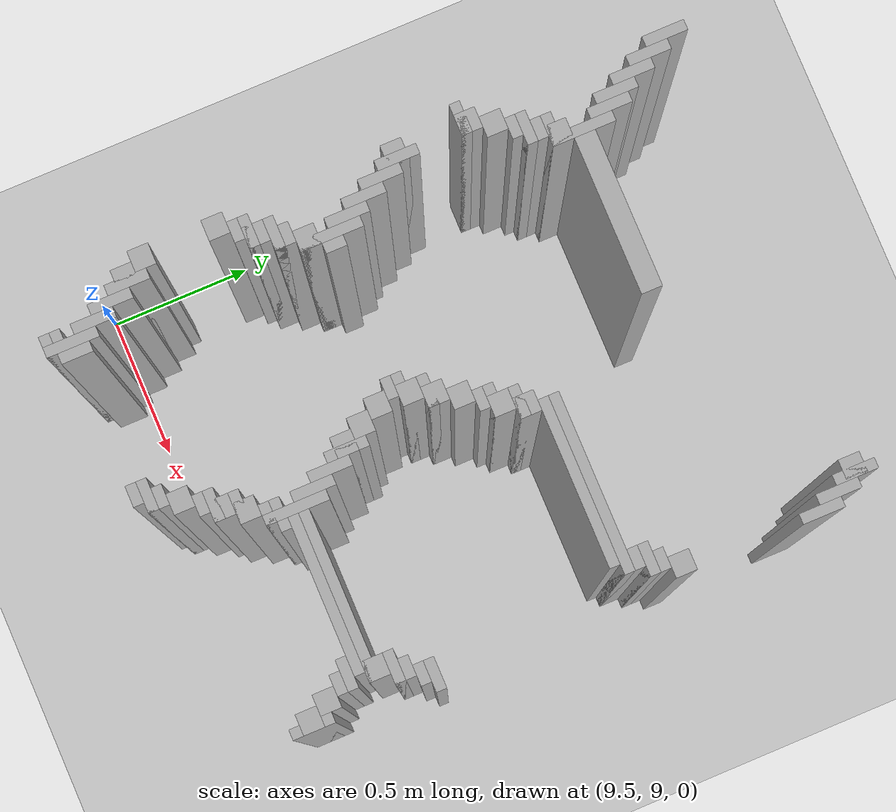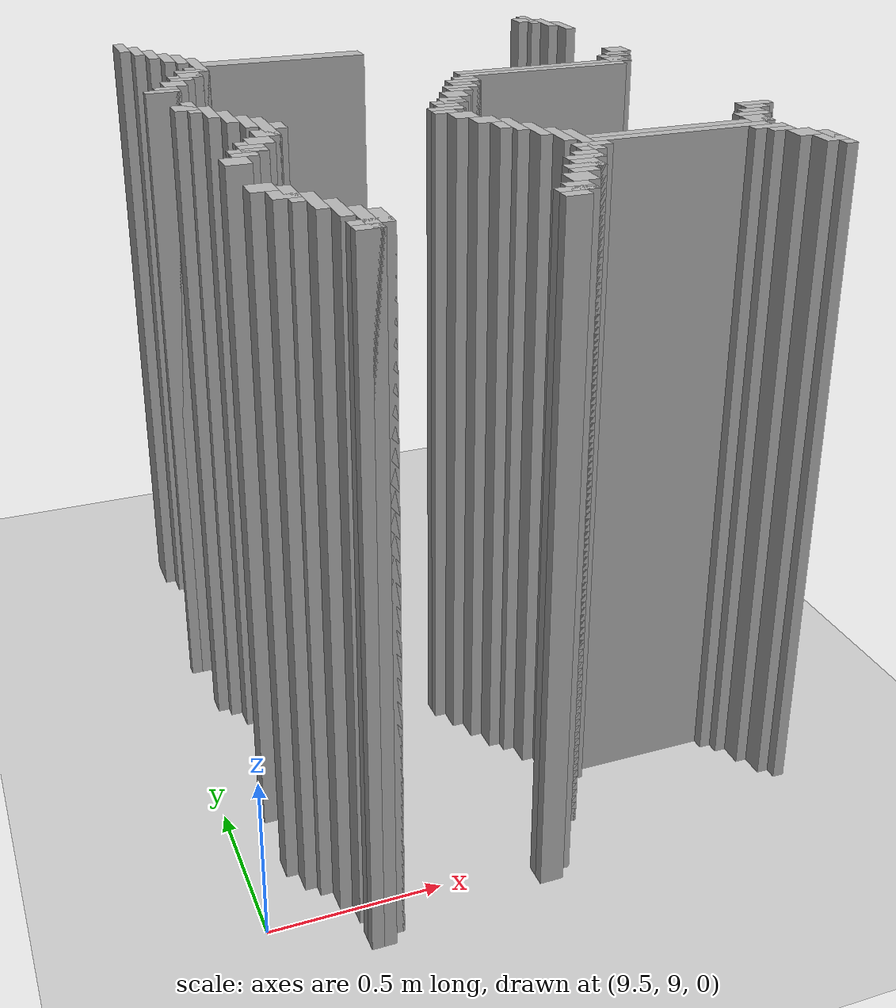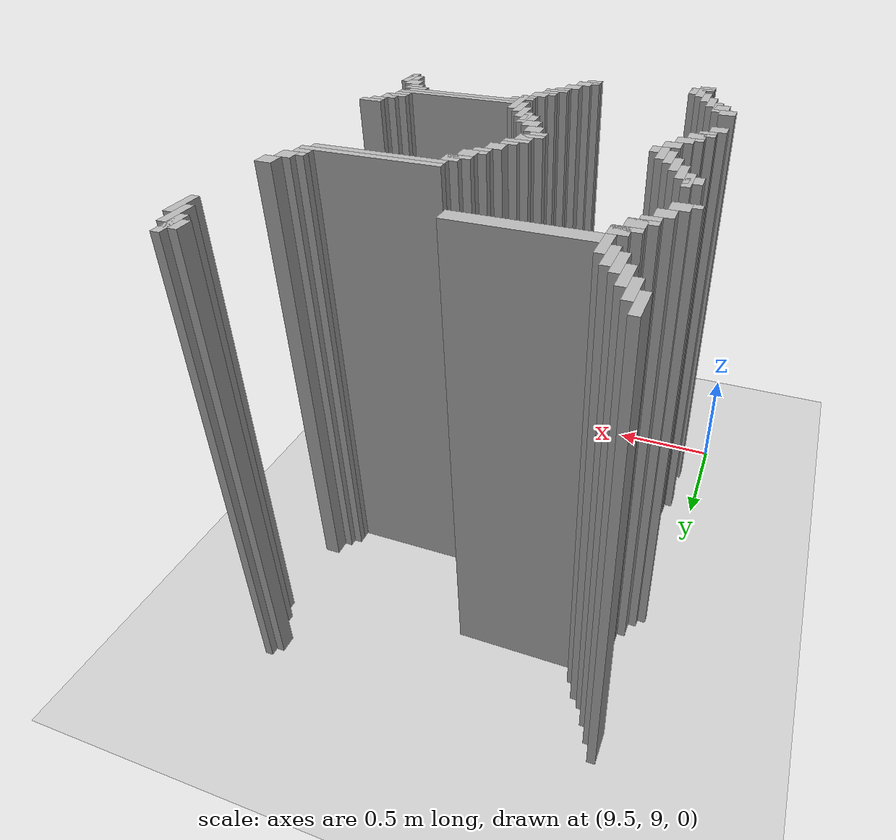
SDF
<sdf version="1.6">
 <world name="slam_world">
  <model name="ground_plane">
   <static>true</static>
   <link name="link">
    <collision name="collision">
     <geometry><plane><normal>0 0 1</normal><size>100 100</size></plane></geometry>
    </collision>
    <visual name="visual">
     <geometry><plane><normal>0 0 1</normal><size>100 100</size></plane></geometry>
     <material>
      <ambient>0.8 0.8 0.8 1</ambient>
      <diffuse>0.8 0.8 0.8 1</diffuse>
      <specular>0.8 0.8 0.8 1</specular>
     </material>
    </visual>
   </link>
  </model>
  <model name="wall_2192">
   <static>true</static>
   <pose>9.622969837587007 10.962877030162412 1.0 0 0 0</pose>
   <link name="link">
    <collision name="collision">
     <geometry><box><size>0.03480278422273782 0.13921113689095127 2.0</size></box></geometry>
    </collision>
    <visual name="visual">
     <geometry><box><size>0.03480278422273782 0.13921113689095127 2.0</size></box></geometry>
     <material><ambient>0.5 0.5 0.5 1</ambient><diffuse>0.7 0.7 0.7 1</diffuse></material>
    </visual>
   </link>
  </model>
  <model name="wall_2193">
   <static>true</static>
   <pose>11.084686774941995 10.962877030162412 1.0 0 0 0</pose>
   <link name="link">
    <collision name="collision">
     <geometry><box><size>0.03480278422273782 0.13921113689095127 2.0</size></box></geometry>
    </collision>
    <visual name="visual">
     <geometry><box><size>0.03480278422273782 0.13921113689095127 2.0</size></box></geometry>
     <material><ambient>0.5 0.5 0.5 1</ambient><diffuse>0.7 0.7 0.7 1</diffuse></material>
    </visual>
   </link>
  </model>
  <model name="wall_2205">
   <static>true</static>
   <pose>11.067285382830626 10.962877030162412 1.0 0 0 0</pose>
   <link name="link">
    <collision name="collision">
     <geometry><box><size>0.06960556844547564 0.06960556844547564 2.0</size></box></geometry>
    </collision>
    <visual name="visual">
     <geometry><box><size>0.06960556844547564 0.06960556844547564 2.0</size></box></geometry>
     <material><ambient>0.5 0.5 0.5 1</ambient><diffuse>0.7 0.7 0.7 1</diffuse></material>
    </visual>
   </link>
  </model>
  <model name="wall_2216">
   <static>true</static>
   <pose>9.657772621809745 10.893271461716937 1.0 0 0 0</pose>
   <link name="link">
    <collision name="collision">
     <geometry><box><size>0.03480278422273782 0.13921113689095127 2.0</size></box></geometry>
    </collision>
    <visual name="visual">
     <geometry><box><size>0.03480278422273782 0.13921113689095127 2.0</size></box></geometry>
     <material><ambient>0.5 0.5 0.5 1</ambient><diffuse>0.7 0.7 0.7 1</diffuse></material>
    </visual>
   </link>
  </model>
  <model name="wall_2217">
   <static>true</static>
   <pose>11.119489559164732 10.893271461716937 1.0 0 0 0</pose>
   <link name="link">
    <collision name="collision">
     <geometry><box><size>0.03480278422273782 0.13921113689095127 2.0</size></box></geometry>
    </collision>
    <visual name="visual">
     <geometry><box><size>0.03480278422273782 0.13921113689095127 2.0</size></box></geometry>
     <material><ambient>0.5 0.5 0.5 1</ambient><diffuse>0.7 0.7 0.7 1</diffuse></material>
    </visual>
   </link>
  </model>
  <model name="wall_2235">
   <static>true</static>
   <pose>9.692575406032482 10.82366589327146 1.0 0 0 0</pose>
   <link name="link">
    <collision name="collision">
     <geometry><box><size>0.03480278422273782 0.13921113689095127 2.0</size></box></geometry>
    </collision>
    <visual name="visual">
     <geometry><box><size>0.03480278422273782 0.13921113689095127 2.0</size></box></geometry>
     <material><ambient>0.5 0.5 0.5 1</ambient><diffuse>0.7 0.7 0.7 1</diffuse></material>
    </visual>
   </link>
  </model>
  <model name="wall_2236">
   <static>true</static>
   <pose>11.154292343387471 10.82366589327146 1.0 0 0 0</pose>
   <link name="link">
    <collision name="collision">
     <geometry><box><size>0.03480278422273782 0.13921113689095127 2.0</size></box></geometry>
    </collision>
    <visual name="visual">
     <geometry><box><size>0.03480278422273782 0.13921113689095127 2.0</size></box></geometry>
     <material><ambient>0.5 0.5 0.5 1</ambient><diffuse>0.7 0.7 0.7 1</diffuse></material>
    </visual>
   </link>
  </model>
  <model name="wall_2247">
   <static>true</static>
   <pose>9.72737819025522 10.754060324825986 1.0 0 0 0</pose>
   <link name="link">
    <collision name="collision">
     <geometry><box><size>0.03480278422273782 0.13921113689095127 2.0</size></box></geometry>
    </collision>
    <visual name="visual">
     <geometry><box><size>0.03480278422273782 0.13921113689095127 2.0</size></box></geometry>
     <material><ambient>0.5 0.5 0.5 1</ambient><diffuse>0.7 0.7 0.7 1</diffuse></material>
    </visual>
   </link>
  </model>
  <model name="wall_2259">
   <static>true</static>
   <pose>9.762180974477959 10.719257540603248 1.0 0 0 0</pose>
   <link name="link">
    <collision name="collision">
     <geometry><box><size>0.03480278422273782 0.13921113689095127 2.0</size></box></geometry>
    </collision>
    <visual name="visual">
     <geometry><box><size>0.03480278422273782 0.13921113689095127 2.0</size></box></geometry>
     <material><ambient>0.5 0.5 0.5 1</ambient><diffuse>0.7 0.7 0.7 1</diffuse></material>
    </visual>
   </link>
  </model>
  <model name="wall_2277">
   <static>true</static>
   <pose>9.796983758700696 10.614849187935034 1.0 0 0 0</pose>
   <link name="link">
    <collision name="collision">
     <geometry><box><size>0.03480278422273782 0.2088167053364269 2.0</size></box></geometry>
    </collision>
    <visual name="visual">
     <geometry><box><size>0.03480278422273782 0.2088167053364269 2.0</size></box></geometry>
     <material><ambient>0.5 0.5 0.5 1</ambient><diffuse>0.7 0.7 0.7 1</diffuse></material>
    </visual>
   </link>
  </model>
  <model name="wall_2296">
   <static>true</static>
   <pose>10.075406032482599 10.614849187935034 1.0 0 0 0</pose>
   <link name="link">
    <collision name="collision">
     <geometry><box><size>0.5220417633410672 0.06960556844547564 2.0</size></box></geometry>
    </collision>
    <visual name="visual">
     <geometry><box><size>0.5220417633410672 0.06960556844547564 2.0</size></box></geometry>
     <material><ambient>0.5 0.5 0.5 1</ambient><diffuse>0.7 0.7 0.7 1</diffuse></material>
    </visual>
   </link>
  </model>
  <model name="wall_2308">
   <static>true</static>
   <pose>9.779582366589327 10.54524361948956 1.0 0 0 0</pose>
   <link name="link">
    <collision name="collision">
     <geometry><box><size>0.06960556844547564 0.06960556844547564 2.0</size></box></geometry>
    </collision>
    <visual name="visual">
     <geometry><box><size>0.06960556844547564 0.06960556844547564 2.0</size></box></geometry>
     <material><ambient>0.5 0.5 0.5 1</ambient><diffuse>0.7 0.7 0.7 1</diffuse></material>
    </visual>
   </link>
  </model>
  <model name="wall_2319">
   <static>true</static>
   <pose>9.762180974477959 10.52784222737819 1.0 0 0 0</pose>
   <link name="link">
    <collision name="collision">
     <geometry><box><size>0.10440835266821345 0.03480278422273782 2.0</size></box></geometry>
    </collision>
    <visual name="visual">
     <geometry><box><size>0.10440835266821345 0.03480278422273782 2.0</size></box></geometry>
     <material><ambient>0.5 0.5 0.5 1</ambient><diffuse>0.7 0.7 0.7 1</diffuse></material>
    </visual>
   </link>
  </model>
  <model name="wall_2330">
   <static>true</static>
   <pose>9.744779582366588 10.475638051044083 1.0 0 0 0</pose>
   <link name="link">
    <collision name="collision">
     <geometry><box><size>0.06960556844547564 0.06960556844547564 2.0</size></box></geometry>
    </collision>
    <visual name="visual">
     <geometry><box><size>0.06960556844547564 0.06960556844547564 2.0</size></box></geometry>
     <material><ambient>0.5 0.5 0.5 1</ambient><diffuse>0.7 0.7 0.7 1</diffuse></material>
    </visual>
   </link>
  </model>
  <model name="wall_2341">
   <static>true</static>
   <pose>9.72737819025522 10.458236658932714 1.0 0 0 0</pose>
   <link name="link">
    <collision name="collision">
     <geometry><box><size>0.10440835266821345 0.03480278422273782 2.0</size></box></geometry>
    </collision>
    <visual name="visual">
     <geometry><box><size>0.10440835266821345 0.03480278422273782 2.0</size></box></geometry>
     <material><ambient>0.5 0.5 0.5 1</ambient><diffuse>0.7 0.7 0.7 1</diffuse></material>
    </visual>
   </link>
  </model>
  <model name="wall_2348">
   <static>true</static>
   <pose>9.70997679814385 10.423433874709977 1.0 0 0 0</pose>
   <link name="link">
    <collision name="collision">
     <geometry><box><size>0.06960556844547564 0.03480278422273782 2.0</size></box></geometry>
    </collision>
    <visual name="visual">
     <geometry><box><size>0.06960556844547564 0.03480278422273782 2.0</size></box></geometry>
     <material><ambient>0.5 0.5 0.5 1</ambient><diffuse>0.7 0.7 0.7 1</diffuse></material>
    </visual>
   </link>
  </model>
  <model name="wall_2357">
   <static>true</static>
   <pose>9.675174013921113 10.37122969837587 1.0 0 0 0</pose>
   <link name="link">
    <collision name="collision">
     <geometry><box><size>0.06960556844547564 0.06960556844547564 2.0</size></box></geometry>
    </collision>
    <visual name="visual">
     <geometry><box><size>0.06960556844547564 0.06960556844547564 2.0</size></box></geometry>
     <material><ambient>0.5 0.5 0.5 1</ambient><diffuse>0.7 0.7 0.7 1</diffuse></material>
    </visual>
   </link>
  </model>
  <model name="wall_2358">
   <static>true</static>
   <pose>11.1368909512761 10.37122969837587 1.0 0 0 0</pose>
   <link name="link">
    <collision name="collision">
     <geometry><box><size>0.06960556844547564 0.06960556844547564 2.0</size></box></geometry>
    </collision>
    <visual name="visual">
     <geometry><box><size>0.06960556844547564 0.06960556844547564 2.0</size></box></geometry>
     <material><ambient>0.5 0.5 0.5 1</ambient><diffuse>0.7 0.7 0.7 1</diffuse></material>
    </visual>
   </link>
  </model>
  <model name="wall_2368">
   <static>true</static>
   <pose>9.640371229698376 10.301624129930394 1.0 0 0 0</pose>
   <link name="link">
    <collision name="collision">
     <geometry><box><size>0.06960556844547564 0.06960556844547564 2.0</size></box></geometry>
    </collision>
    <visual name="visual">
     <geometry><box><size>0.06960556844547564 0.06960556844547564 2.0</size></box></geometry>
     <material><ambient>0.5 0.5 0.5 1</ambient><diffuse>0.7 0.7 0.7 1</diffuse></material>
    </visual>
   </link>
  </model>
  <model name="wall_2369">
   <static>true</static>
   <pose>11.102088167053363 10.301624129930394 1.0 0 0 0</pose>
   <link name="link">
    <collision name="collision">
     <geometry><box><size>0.06960556844547564 0.06960556844547564 2.0</size></box></geometry>
    </collision>
    <visual name="visual">
     <geometry><box><size>0.06960556844547564 0.06960556844547564 2.0</size></box></geometry>
     <material><ambient>0.5 0.5 0.5 1</ambient><diffuse>0.7 0.7 0.7 1</diffuse></material>
    </visual>
   </link>
  </model>
  <model name="wall_2379">
   <static>true</static>
   <pose>9.622969837587007 10.284222737819025 1.0 0 0 0</pose>
   <link name="link">
    <collision name="collision">
     <geometry><box><size>0.10440835266821345 0.03480278422273782 2.0</size></box></geometry>
    </collision>
    <visual name="visual">
     <geometry><box><size>0.10440835266821345 0.03480278422273782 2.0</size></box></geometry>
     <material><ambient>0.5 0.5 0.5 1</ambient><diffuse>0.7 0.7 0.7 1</diffuse></material>
    </visual>
   </link>
  </model>
  <model name="wall_2380">
   <static>true</static>
   <pose>11.084686774941995 10.284222737819025 1.0 0 0 0</pose>
   <link name="link">
    <collision name="collision">
     <geometry><box><size>0.10440835266821345 0.03480278422273782 2.0</size></box></geometry>
    </collision>
    <visual name="visual">
     <geometry><box><size>0.10440835266821345 0.03480278422273782 2.0</size></box></geometry>
     <material><ambient>0.5 0.5 0.5 1</ambient><diffuse>0.7 0.7 0.7 1</diffuse></material>
    </visual>
   </link>
  </model>
  <model name="wall_2387">
   <static>true</static>
   <pose>11.067285382830626 10.232018561484919 1.0 0 0 0</pose>
   <link name="link">
    <collision name="collision">
     <geometry><box><size>0.06960556844547564 0.06960556844547564 2.0</size></box></geometry>
    </collision>
    <visual name="visual">
     <geometry><box><size>0.06960556844547564 0.06960556844547564 2.0</size></box></geometry>
     <material><ambient>0.5 0.5 0.5 1</ambient><diffuse>0.7 0.7 0.7 1</diffuse></material>
    </visual>
   </link>
  </model>
  <model name="wall_2396">
   <static>true</static>
   <pose>10.806264501160092 10.214617169373549 1.0 0 0 0</pose>
   <link name="link">
    <collision name="collision">
     <geometry><box><size>0.5916473317865429 0.03480278422273782 2.0</size></box></geometry>
    </collision>
    <visual name="visual">
     <geometry><box><size>0.5916473317865429 0.03480278422273782 2.0</size></box></geometry>
     <material><ambient>0.5 0.5 0.5 1</ambient><diffuse>0.7 0.7 0.7 1</diffuse></material>
    </visual>
   </link>
  </model>
  <model name="wall_2404">
   <static>true</static>
   <pose>10.788863109048723 10.179814385150811 1.0 0 0 0</pose>
   <link name="link">
    <collision name="collision">
     <geometry><box><size>0.5568445475638051 0.03480278422273782 2.0</size></box></geometry>
    </collision>
    <visual name="visual">
     <geometry><box><size>0.5568445475638051 0.03480278422273782 2.0</size></box></geometry>
     <material><ambient>0.5 0.5 0.5 1</ambient><diffuse>0.7 0.7 0.7 1</diffuse></material>
    </visual>
   </link>
  </model>
  <model name="wall_2414">
   <static>true</static>
   <pose>10.51044083526682 10.127610208816705 1.0 0 0 0</pose>
   <link name="link">
    <collision name="collision">
     <geometry><box><size>0.06960556844547564 0.06960556844547564 2.0</size></box></geometry>
    </collision>
    <visual name="visual">
     <geometry><box><size>0.06960556844547564 0.06960556844547564 2.0</size></box></geometry>
     <material><ambient>0.5 0.5 0.5 1</ambient><diffuse>0.7 0.7 0.7 1</diffuse></material>
    </visual>
   </link>
  </model>
  <model name="wall_2427">
   <static>true</static>
   <pose>9.657772621809745 10.058004640371228 1.0 0 0 0</pose>
   <link name="link">
    <collision name="collision">
     <geometry><box><size>0.03480278422273782 0.13921113689095127 2.0</size></box></geometry>
    </collision>
    <visual name="visual">
     <geometry><box><size>0.03480278422273782 0.13921113689095127 2.0</size></box></geometry>
     <material><ambient>0.5 0.5 0.5 1</ambient><diffuse>0.7 0.7 0.7 1</diffuse></material>
    </visual>
   </link>
  </model>
  <model name="wall_2428">
   <static>true</static>
   <pose>10.493039443155451 10.110208816705336 1.0 0 0 0</pose>
   <link name="link">
    <collision name="collision">
     <geometry><box><size>0.10440835266821345 0.03480278422273782 2.0</size></box></geometry>
    </collision>
    <visual name="visual">
     <geometry><box><size>0.10440835266821345 0.03480278422273782 2.0</size></box></geometry>
     <material><ambient>0.5 0.5 0.5 1</ambient><diffuse>0.7 0.7 0.7 1</diffuse></material>
    </visual>
   </link>
  </model>
  <model name="wall_2441">
   <static>true</static>
   <pose>9.640371229698376 10.058004640371228 1.0 0 0 0</pose>
   <link name="link">
    <collision name="collision">
     <geometry><box><size>0.06960556844547564 0.06960556844547564 2.0</size></box></geometry>
    </collision>
    <visual name="visual">
     <geometry><box><size>0.06960556844547564 0.06960556844547564 2.0</size></box></geometry>
     <material><ambient>0.5 0.5 0.5 1</ambient><diffuse>0.7 0.7 0.7 1</diffuse></material>
    </visual>
   </link>
  </model>
  <model name="wall_2442">
   <static>true</static>
   <pose>10.475638051044083 10.058004640371228 1.0 0 0 0</pose>
   <link name="link">
    <collision name="collision">
     <geometry><box><size>0.06960556844547564 0.06960556844547564 2.0</size></box></geometry>
    </collision>
    <visual name="visual">
     <geometry><box><size>0.06960556844547564 0.06960556844547564 2.0</size></box></geometry>
     <material><ambient>0.5 0.5 0.5 1</ambient><diffuse>0.7 0.7 0.7 1</diffuse></material>
    </visual>
   </link>
  </model>
  <model name="wall_2455">
   <static>true</static>
   <pose>9.692575406032482 9.988399071925754 1.0 0 0 0</pose>
   <link name="link">
    <collision name="collision">
     <geometry><box><size>0.03480278422273782 0.13921113689095127 2.0</size></box></geometry>
    </collision>
    <visual name="visual">
     <geometry><box><size>0.03480278422273782 0.13921113689095127 2.0</size></box></geometry>
     <material><ambient>0.5 0.5 0.5 1</ambient><diffuse>0.7 0.7 0.7 1</diffuse></material>
    </visual>
   </link>
  </model>
  <model name="wall_2456">
   <static>true</static>
   <pose>10.458236658932714 10.04060324825986 1.0 0 0 0</pose>
   <link name="link">
    <collision name="collision">
     <geometry><box><size>0.10440835266821345 0.03480278422273782 2.0</size></box></geometry>
    </collision>
    <visual name="visual">
     <geometry><box><size>0.10440835266821345 0.03480278422273782 2.0</size></box></geometry>
     <material><ambient>0.5 0.5 0.5 1</ambient><diffuse>0.7 0.7 0.7 1</diffuse></material>
    </visual>
   </link>
  </model>
  <model name="wall_2466">
   <static>true</static>
   <pose>10.440835266821345 10.005800464037122 1.0 0 0 0</pose>
   <link name="link">
    <collision name="collision">
     <geometry><box><size>0.06960556844547564 0.03480278422273782 2.0</size></box></geometry>
    </collision>
    <visual name="visual">
     <geometry><box><size>0.06960556844547564 0.03480278422273782 2.0</size></box></geometry>
     <material><ambient>0.5 0.5 0.5 1</ambient><diffuse>0.7 0.7 0.7 1</diffuse></material>
    </visual>
   </link>
  </model>
  <model name="wall_2477">
   <static>true</static>
   <pose>9.72737819025522 9.918793503480279 1.0 0 0 0</pose>
   <link name="link">
    <collision name="collision">
     <geometry><box><size>0.03480278422273782 0.13921113689095127 2.0</size></box></geometry>
    </collision>
    <visual name="visual">
     <geometry><box><size>0.03480278422273782 0.13921113689095127 2.0</size></box></geometry>
     <material><ambient>0.5 0.5 0.5 1</ambient><diffuse>0.7 0.7 0.7 1</diffuse></material>
    </visual>
   </link>
  </model>
  <model name="wall_2478">
   <static>true</static>
   <pose>10.406032482598608 9.953596287703016 1.0 0 0 0</pose>
   <link name="link">
    <collision name="collision">
     <geometry><box><size>0.06960556844547564 0.06960556844547564 2.0</size></box></geometry>
    </collision>
    <visual name="visual">
     <geometry><box><size>0.06960556844547564 0.06960556844547564 2.0</size></box></geometry>
     <material><ambient>0.5 0.5 0.5 1</ambient><diffuse>0.7 0.7 0.7 1</diffuse></material>
    </visual>
   </link>
  </model>
  <model name="wall_2491">
   <static>true</static>
   <pose>9.762180974477959 9.849187935034802 1.0 0 0 0</pose>
   <link name="link">
    <collision name="collision">
     <geometry><box><size>0.03480278422273782 0.13921113689095127 2.0</size></box></geometry>
    </collision>
    <visual name="visual">
     <geometry><box><size>0.03480278422273782 0.13921113689095127 2.0</size></box></geometry>
     <material><ambient>0.5 0.5 0.5 1</ambient><diffuse>0.7 0.7 0.7 1</diffuse></material>
    </visual>
   </link>
  </model>
  <model name="wall_2492">
   <static>true</static>
   <pose>10.37122969837587 9.88399071925754 1.0 0 0 0</pose>
   <link name="link">
    <collision name="collision">
     <geometry><box><size>0.06960556844547564 0.06960556844547564 2.0</size></box></geometry>
    </collision>
    <visual name="visual">
     <geometry><box><size>0.06960556844547564 0.06960556844547564 2.0</size></box></geometry>
     <material><ambient>0.5 0.5 0.5 1</ambient><diffuse>0.7 0.7 0.7 1</diffuse></material>
    </visual>
   </link>
  </model>
  <model name="wall_2505">
   <static>true</static>
   <pose>9.796983758700696 9.779582366589327 1.0 0 0 0</pose>
   <link name="link">
    <collision name="collision">
     <geometry><box><size>0.03480278422273782 0.2088167053364269 2.0</size></box></geometry>
    </collision>
    <visual name="visual">
     <geometry><box><size>0.03480278422273782 0.2088167053364269 2.0</size></box></geometry>
     <material><ambient>0.5 0.5 0.5 1</ambient><diffuse>0.7 0.7 0.7 1</diffuse></material>
    </visual>
   </link>
  </model>
  <model name="wall_2506">
   <static>true</static>
   <pose>10.3538283062645 9.86658932714617 1.0 0 0 0</pose>
   <link name="link">
    <collision name="collision">
     <geometry><box><size>0.10440835266821345 0.03480278422273782 2.0</size></box></geometry>
    </collision>
    <visual name="visual">
     <geometry><box><size>0.10440835266821345 0.03480278422273782 2.0</size></box></geometry>
     <material><ambient>0.5 0.5 0.5 1</ambient><diffuse>0.7 0.7 0.7 1</diffuse></material>
    </visual>
   </link>
  </model>
  <model name="wall_2516">
   <static>true</static>
   <pose>10.336426914153131 9.814385150812065 1.0 0 0 0</pose>
   <link name="link">
    <collision name="collision">
     <geometry><box><size>0.06960556844547564 0.06960556844547564 2.0</size></box></geometry>
    </collision>
    <visual name="visual">
     <geometry><box><size>0.06960556844547564 0.06960556844547564 2.0</size></box></geometry>
     <material><ambient>0.5 0.5 0.5 1</ambient><diffuse>0.7 0.7 0.7 1</diffuse></material>
    </visual>
   </link>
  </model>
  <model name="wall_2527">
   <static>true</static>
   <pose>9.831786542923433 9.779582366589327 1.0 0 0 0</pose>
   <link name="link">
    <collision name="collision">
     <geometry><box><size>0.03480278422273782 0.06960556844547564 2.0</size></box></geometry>
    </collision>
    <visual name="visual">
     <geometry><box><size>0.03480278422273782 0.06960556844547564 2.0</size></box></geometry>
     <material><ambient>0.5 0.5 0.5 1</ambient><diffuse>0.7 0.7 0.7 1</diffuse></material>
    </visual>
   </link>
  </model>
  <model name="wall_2528">
   <static>true</static>
   <pose>10.319025522041763 9.796983758700696 1.0 0 0 0</pose>
   <link name="link">
    <collision name="collision">
     <geometry><box><size>0.10440835266821345 0.03480278422273782 2.0</size></box></geometry>
    </collision>
    <visual name="visual">
     <geometry><box><size>0.10440835266821345 0.03480278422273782 2.0</size></box></geometry>
     <material><ambient>0.5 0.5 0.5 1</ambient><diffuse>0.7 0.7 0.7 1</diffuse></material>
    </visual>
   </link>
  </model>
  <model name="wall_2538">
   <static>true</static>
   <pose>10.301624129930394 9.762180974477959 1.0 0 0 0</pose>
   <link name="link">
    <collision name="collision">
     <geometry><box><size>0.06960556844547564 0.03480278422273782 2.0</size></box></geometry>
    </collision>
    <visual name="visual">
     <geometry><box><size>0.06960556844547564 0.03480278422273782 2.0</size></box></geometry>
     <material><ambient>0.5 0.5 0.5 1</ambient><diffuse>0.7 0.7 0.7 1</diffuse></material>
    </visual>
   </link>
  </model>
  <model name="wall_2547">
   <static>true</static>
   <pose>9.779582366589327 9.70997679814385 1.0 0 0 0</pose>
   <link name="link">
    <collision name="collision">
     <geometry><box><size>0.06960556844547564 0.06960556844547564 2.0</size></box></geometry>
    </collision>
    <visual name="visual">
     <geometry><box><size>0.06960556844547564 0.06960556844547564 2.0</size></box></geometry>
     <material><ambient>0.5 0.5 0.5 1</ambient><diffuse>0.7 0.7 0.7 1</diffuse></material>
    </visual>
   </link>
  </model>
  <model name="wall_2548">
   <static>true</static>
   <pose>10.336426914153131 9.70997679814385 1.0 0 0 0</pose>
   <link name="link">
    <collision name="collision">
     <geometry><box><size>0.06960556844547564 0.06960556844547564 2.0</size></box></geometry>
    </collision>
    <visual name="visual">
     <geometry><box><size>0.06960556844547564 0.06960556844547564 2.0</size></box></geometry>
     <material><ambient>0.5 0.5 0.5 1</ambient><diffuse>0.7 0.7 0.7 1</diffuse></material>
    </visual>
   </link>
  </model>
  <model name="wall_2564">
   <static>true</static>
   <pose>9.744779582366588 9.640371229698376 1.0 0 0 0</pose>
   <link name="link">
    <collision name="collision">
     <geometry><box><size>0.06960556844547564 0.06960556844547564 2.0</size></box></geometry>
    </collision>
    <visual name="visual">
     <geometry><box><size>0.06960556844547564 0.06960556844547564 2.0</size></box></geometry>
     <material><ambient>0.5 0.5 0.5 1</ambient><diffuse>0.7 0.7 0.7 1</diffuse></material>
    </visual>
   </link>
  </model>
  <model name="wall_2565">
   <static>true</static>
   <pose>10.37122969837587 9.640371229698376 1.0 0 0 0</pose>
   <link name="link">
    <collision name="collision">
     <geometry><box><size>0.06960556844547564 0.06960556844547564 2.0</size></box></geometry>
    </collision>
    <visual name="visual">
     <geometry><box><size>0.06960556844547564 0.06960556844547564 2.0</size></box></geometry>
     <material><ambient>0.5 0.5 0.5 1</ambient><diffuse>0.7 0.7 0.7 1</diffuse></material>
    </visual>
   </link>
  </model>
  <model name="wall_2575">
   <static>true</static>
   <pose>9.72737819025522 9.622969837587007 1.0 0 0 0</pose>
   <link name="link">
    <collision name="collision">
     <geometry><box><size>0.10440835266821345 0.03480278422273782 2.0</size></box></geometry>
    </collision>
    <visual name="visual">
     <geometry><box><size>0.10440835266821345 0.03480278422273782 2.0</size></box></geometry>
     <material><ambient>0.5 0.5 0.5 1</ambient><diffuse>0.7 0.7 0.7 1</diffuse></material>
    </visual>
   </link>
  </model>
  <model name="wall_2576">
   <static>true</static>
   <pose>10.423433874709977 9.5707656612529 1.0 0 0 0</pose>
   <link name="link">
    <collision name="collision">
     <geometry><box><size>0.03480278422273782 0.13921113689095127 2.0</size></box></geometry>
    </collision>
    <visual name="visual">
     <geometry><box><size>0.03480278422273782 0.13921113689095127 2.0</size></box></geometry>
     <material><ambient>0.5 0.5 0.5 1</ambient><diffuse>0.7 0.7 0.7 1</diffuse></material>
    </visual>
   </link>
  </model>
  <model name="wall_2586">
   <static>true</static>
   <pose>9.70997679814385 9.5707656612529 1.0 0 0 0</pose>
   <link name="link">
    <collision name="collision">
     <geometry><box><size>0.06960556844547564 0.06960556844547564 2.0</size></box></geometry>
    </collision>
    <visual name="visual">
     <geometry><box><size>0.06960556844547564 0.06960556844547564 2.0</size></box></geometry>
     <material><ambient>0.5 0.5 0.5 1</ambient><diffuse>0.7 0.7 0.7 1</diffuse></material>
    </visual>
   </link>
  </model>
  <model name="wall_2587">
   <static>true</static>
   <pose>10.406032482598608 9.5707656612529 1.0 0 0 0</pose>
   <link name="link">
    <collision name="collision">
     <geometry><box><size>0.06960556844547564 0.06960556844547564 2.0</size></box></geometry>
    </collision>
    <visual name="visual">
     <geometry><box><size>0.06960556844547564 0.06960556844547564 2.0</size></box></geometry>
     <material><ambient>0.5 0.5 0.5 1</ambient><diffuse>0.7 0.7 0.7 1</diffuse></material>
    </visual>
   </link>
  </model>
  <model name="wall_2597">
   <static>true</static>
   <pose>9.692575406032482 9.55336426914153 1.0 0 0 0</pose>
   <link name="link">
    <collision name="collision">
     <geometry><box><size>0.10440835266821345 0.03480278422273782 2.0</size></box></geometry>
    </collision>
    <visual name="visual">
     <geometry><box><size>0.10440835266821345 0.03480278422273782 2.0</size></box></geometry>
     <material><ambient>0.5 0.5 0.5 1</ambient><diffuse>0.7 0.7 0.7 1</diffuse></material>
    </visual>
   </link>
  </model>
  <model name="wall_2598">
   <static>true</static>
   <pose>10.458236658932714 9.501160092807424 1.0 0 0 0</pose>
   <link name="link">
    <collision name="collision">
     <geometry><box><size>0.03480278422273782 0.13921113689095127 2.0</size></box></geometry>
    </collision>
    <visual name="visual">
     <geometry><box><size>0.03480278422273782 0.13921113689095127 2.0</size></box></geometry>
     <material><ambient>0.5 0.5 0.5 1</ambient><diffuse>0.7 0.7 0.7 1</diffuse></material>
    </visual>
   </link>
  </model>
  <model name="wall_2599">
   <static>true</static>
   <pose>11.154292343387471 9.55336426914153 1.0 0 0 0</pose>
   <link name="link">
    <collision name="collision">
     <geometry><box><size>0.10440835266821345 0.03480278422273782 2.0</size></box></geometry>
    </collision>
    <visual name="visual">
     <geometry><box><size>0.10440835266821345 0.03480278422273782 2.0</size></box></geometry>
     <material><ambient>0.5 0.5 0.5 1</ambient><diffuse>0.7 0.7 0.7 1</diffuse></material>
    </visual>
   </link>
  </model>
  <model name="wall_2604">
   <static>true</static>
   <pose>9.675174013921113 9.518561484918793 1.0 0 0 0</pose>
   <link name="link">
    <collision name="collision">
     <geometry><box><size>0.06960556844547564 0.03480278422273782 2.0</size></box></geometry>
    </collision>
    <visual name="visual">
     <geometry><box><size>0.06960556844547564 0.03480278422273782 2.0</size></box></geometry>
     <material><ambient>0.5 0.5 0.5 1</ambient><diffuse>0.7 0.7 0.7 1</diffuse></material>
    </visual>
   </link>
  </model>
  <model name="wall_2605">
   <static>true</static>
   <pose>11.1368909512761 9.518561484918793 1.0 0 0 0</pose>
   <link name="link">
    <collision name="collision">
     <geometry><box><size>0.06960556844547564 0.03480278422273782 2.0</size></box></geometry>
    </collision>
    <visual name="visual">
     <geometry><box><size>0.06960556844547564 0.03480278422273782 2.0</size></box></geometry>
     <material><ambient>0.5 0.5 0.5 1</ambient><diffuse>0.7 0.7 0.7 1</diffuse></material>
    </visual>
   </link>
  </model>
  <model name="wall_2612">
   <static>true</static>
   <pose>9.640371229698376 9.466357308584687 1.0 0 0 0</pose>
   <link name="link">
    <collision name="collision">
     <geometry><box><size>0.06960556844547564 0.06960556844547564 2.0</size></box></geometry>
    </collision>
    <visual name="visual">
     <geometry><box><size>0.06960556844547564 0.06960556844547564 2.0</size></box></geometry>
     <material><ambient>0.5 0.5 0.5 1</ambient><diffuse>0.7 0.7 0.7 1</diffuse></material>
    </visual>
   </link>
  </model>
  <model name="wall_2613">
   <static>true</static>
   <pose>10.493039443155451 9.431554524361948 1.0 0 0 0</pose>
   <link name="link">
    <collision name="collision">
     <geometry><box><size>0.03480278422273782 0.13921113689095127 2.0</size></box></geometry>
    </collision>
    <visual name="visual">
     <geometry><box><size>0.03480278422273782 0.13921113689095127 2.0</size></box></geometry>
     <material><ambient>0.5 0.5 0.5 1</ambient><diffuse>0.7 0.7 0.7 1</diffuse></material>
    </visual>
   </link>
  </model>
  <model name="wall_2614">
   <static>true</static>
   <pose>11.102088167053363 9.466357308584687 1.0 0 0 0</pose>
   <link name="link">
    <collision name="collision">
     <geometry><box><size>0.06960556844547564 0.06960556844547564 2.0</size></box></geometry>
    </collision>
    <visual name="visual">
     <geometry><box><size>0.06960556844547564 0.06960556844547564 2.0</size></box></geometry>
     <material><ambient>0.5 0.5 0.5 1</ambient><diffuse>0.7 0.7 0.7 1</diffuse></material>
    </visual>
   </link>
  </model>
  <model name="wall_2624">
   <static>true</static>
   <pose>10.52784222737819 9.361948955916473 1.0 0 0 0</pose>
   <link name="link">
    <collision name="collision">
     <geometry><box><size>0.03480278422273782 0.2088167053364269 2.0</size></box></geometry>
    </collision>
    <visual name="visual">
     <geometry><box><size>0.03480278422273782 0.2088167053364269 2.0</size></box></geometry>
     <material><ambient>0.5 0.5 0.5 1</ambient><diffuse>0.7 0.7 0.7 1</diffuse></material>
    </visual>
   </link>
  </model>
  <model name="wall_2625">
   <static>true</static>
   <pose>11.084686774941995 9.448955916473318 1.0 0 0 0</pose>
   <link name="link">
    <collision name="collision">
     <geometry><box><size>0.10440835266821345 0.03480278422273782 2.0</size></box></geometry>
    </collision>
    <visual name="visual">
     <geometry><box><size>0.10440835266821345 0.03480278422273782 2.0</size></box></geometry>
     <material><ambient>0.5 0.5 0.5 1</ambient><diffuse>0.7 0.7 0.7 1</diffuse></material>
    </visual>
   </link>
  </model>
  <model name="wall_2631">
   <static>true</static>
   <pose>11.067285382830626 9.39675174013921 1.0 0 0 0</pose>
   <link name="link">
    <collision name="collision">
     <geometry><box><size>0.06960556844547564 0.06960556844547564 2.0</size></box></geometry>
    </collision>
    <visual name="visual">
     <geometry><box><size>0.06960556844547564 0.06960556844547564 2.0</size></box></geometry>
     <material><ambient>0.5 0.5 0.5 1</ambient><diffuse>0.7 0.7 0.7 1</diffuse></material>
    </visual>
   </link>
  </model>
  <model name="wall_2639">
   <static>true</static>
   <pose>10.82366589327146 9.379350348027842 1.0 0 0 0</pose>
   <link name="link">
    <collision name="collision">
     <geometry><box><size>0.5568445475638051 0.03480278422273782 2.0</size></box></geometry>
    </collision>
    <visual name="visual">
     <geometry><box><size>0.5568445475638051 0.03480278422273782 2.0</size></box></geometry>
     <material><ambient>0.5 0.5 0.5 1</ambient><diffuse>0.7 0.7 0.7 1</diffuse></material>
    </visual>
   </link>
  </model>
  <model name="wall_2650">
   <static>true</static>
   <pose>10.806264501160092 9.344547563805104 1.0 0 0 0</pose>
   <link name="link">
    <collision name="collision">
     <geometry><box><size>0.5220417633410672 0.03480278422273782 2.0</size></box></geometry>
    </collision>
    <visual name="visual">
     <geometry><box><size>0.5220417633410672 0.03480278422273782 2.0</size></box></geometry>
     <material><ambient>0.5 0.5 0.5 1</ambient><diffuse>0.7 0.7 0.7 1</diffuse></material>
    </visual>
   </link>
  </model>
  <model name="wall_2665">
   <static>true</static>
   <pose>10.52784222737819 9.309744779582367 1.0 0 0 0</pose>
   <link name="link">
    <collision name="collision">
     <geometry><box><size>0.10440835266821345 0.03480278422273782 2.0</size></box></geometry>
    </collision>
    <visual name="visual">
     <geometry><box><size>0.10440835266821345 0.03480278422273782 2.0</size></box></geometry>
     <material><ambient>0.5 0.5 0.5 1</ambient><diffuse>0.7 0.7 0.7 1</diffuse></material>
    </visual>
   </link>
  </model>
  <model name="wall_2666">
   <static>true</static>
   <pose>11.049883990719257 9.309744779582367 1.0 0 0 0</pose>
   <link name="link">
    <collision name="collision">
     <geometry><box><size>0.10440835266821345 0.03480278422273782 2.0</size></box></geometry>
    </collision>
    <visual name="visual">
     <geometry><box><size>0.10440835266821345 0.03480278422273782 2.0</size></box></geometry>
     <material><ambient>0.5 0.5 0.5 1</ambient><diffuse>0.7 0.7 0.7 1</diffuse></material>
    </visual>
   </link>
  </model>
  <model name="wall_2684">
   <static>true</static>
   <pose>10.51044083526682 9.274941995359628 1.0 0 0 0</pose>
   <link name="link">
    <collision name="collision">
     <geometry><box><size>0.06960556844547564 0.03480278422273782 2.0</size></box></geometry>
    </collision>
    <visual name="visual">
     <geometry><box><size>0.06960556844547564 0.03480278422273782 2.0</size></box></geometry>
     <material><ambient>0.5 0.5 0.5 1</ambient><diffuse>0.7 0.7 0.7 1</diffuse></material>
    </visual>
   </link>
  </model>
  <model name="wall_2685">
   <static>true</static>
   <pose>11.067285382830626 9.274941995359628 1.0 0 0 0</pose>
   <link name="link">
    <collision name="collision">
     <geometry><box><size>0.06960556844547564 0.03480278422273782 2.0</size></box></geometry>
    </collision>
    <visual name="visual">
     <geometry><box><size>0.06960556844547564 0.03480278422273782 2.0</size></box></geometry>
     <material><ambient>0.5 0.5 0.5 1</ambient><diffuse>0.7 0.7 0.7 1</diffuse></material>
    </visual>
   </link>
  </model>
  <model name="wall_2701">
   <static>true</static>
   <pose>9.640371229698376 9.222737819025522 1.0 0 0 0</pose>
   <link name="link">
    <collision name="collision">
     <geometry><box><size>0.06960556844547564 0.06960556844547564 2.0</size></box></geometry>
    </collision>
    <visual name="visual">
     <geometry><box><size>0.06960556844547564 0.06960556844547564 2.0</size></box></geometry>
     <material><ambient>0.5 0.5 0.5 1</ambient><diffuse>0.7 0.7 0.7 1</diffuse></material>
    </visual>
   </link>
  </model>
  <model name="wall_2702">
   <static>true</static>
   <pose>10.475638051044083 9.222737819025522 1.0 0 0 0</pose>
   <link name="link">
    <collision name="collision">
     <geometry><box><size>0.06960556844547564 0.06960556844547564 2.0</size></box></geometry>
    </collision>
    <visual name="visual">
     <geometry><box><size>0.06960556844547564 0.06960556844547564 2.0</size></box></geometry>
     <material><ambient>0.5 0.5 0.5 1</ambient><diffuse>0.7 0.7 0.7 1</diffuse></material>
    </visual>
   </link>
  </model>
  <model name="wall_2703">
   <static>true</static>
   <pose>11.102088167053363 9.222737819025522 1.0 0 0 0</pose>
   <link name="link">
    <collision name="collision">
     <geometry><box><size>0.06960556844547564 0.06960556844547564 2.0</size></box></geometry>
    </collision>
    <visual name="visual">
     <geometry><box><size>0.06960556844547564 0.06960556844547564 2.0</size></box></geometry>
     <material><ambient>0.5 0.5 0.5 1</ambient><diffuse>0.7 0.7 0.7 1</diffuse></material>
    </visual>
   </link>
  </model>
  <model name="wall_2720">
   <static>true</static>
   <pose>9.692575406032482 9.153132250580047 1.0 0 0 0</pose>
   <link name="link">
    <collision name="collision">
     <geometry><box><size>0.03480278422273782 0.13921113689095127 2.0</size></box></geometry>
    </collision>
    <visual name="visual">
     <geometry><box><size>0.03480278422273782 0.13921113689095127 2.0</size></box></geometry>
     <material><ambient>0.5 0.5 0.5 1</ambient><diffuse>0.7 0.7 0.7 1</diffuse></material>
    </visual>
   </link>
  </model>
  <model name="wall_2721">
   <static>true</static>
   <pose>10.458236658932714 9.205336426914153 1.0 0 0 0</pose>
   <link name="link">
    <collision name="collision">
     <geometry><box><size>0.10440835266821345 0.03480278422273782 2.0</size></box></geometry>
    </collision>
    <visual name="visual">
     <geometry><box><size>0.10440835266821345 0.03480278422273782 2.0</size></box></geometry>
     <material><ambient>0.5 0.5 0.5 1</ambient><diffuse>0.7 0.7 0.7 1</diffuse></material>
    </visual>
   </link>
  </model>
  <model name="wall_2722">
   <static>true</static>
   <pose>11.154292343387471 9.153132250580047 1.0 0 0 0</pose>
   <link name="link">
    <collision name="collision">
     <geometry><box><size>0.03480278422273782 0.13921113689095127 2.0</size></box></geometry>
    </collision>
    <visual name="visual">
     <geometry><box><size>0.03480278422273782 0.13921113689095127 2.0</size></box></geometry>
     <material><ambient>0.5 0.5 0.5 1</ambient><diffuse>0.7 0.7 0.7 1</diffuse></material>
    </visual>
   </link>
  </model>
  <model name="wall_2736">
   <static>true</static>
   <pose>9.675174013921113 9.153132250580047 1.0 0 0 0</pose>
   <link name="link">
    <collision name="collision">
     <geometry><box><size>0.06960556844547564 0.06960556844547564 2.0</size></box></geometry>
    </collision>
    <visual name="visual">
     <geometry><box><size>0.06960556844547564 0.06960556844547564 2.0</size></box></geometry>
     <material><ambient>0.5 0.5 0.5 1</ambient><diffuse>0.7 0.7 0.7 1</diffuse></material>
    </visual>
   </link>
  </model>
  <model name="wall_2737">
   <static>true</static>
   <pose>10.440835266821345 9.153132250580047 1.0 0 0 0</pose>
   <link name="link">
    <collision name="collision">
     <geometry><box><size>0.06960556844547564 0.06960556844547564 2.0</size></box></geometry>
    </collision>
    <visual name="visual">
     <geometry><box><size>0.06960556844547564 0.06960556844547564 2.0</size></box></geometry>
     <material><ambient>0.5 0.5 0.5 1</ambient><diffuse>0.7 0.7 0.7 1</diffuse></material>
    </visual>
   </link>
  </model>
  <model name="wall_2738">
   <static>true</static>
   <pose>11.1368909512761 9.153132250580047 1.0 0 0 0</pose>
   <link name="link">
    <collision name="collision">
     <geometry><box><size>0.06960556844547564 0.06960556844547564 2.0</size></box></geometry>
    </collision>
    <visual name="visual">
     <geometry><box><size>0.06960556844547564 0.06960556844547564 2.0</size></box></geometry>
     <material><ambient>0.5 0.5 0.5 1</ambient><diffuse>0.7 0.7 0.7 1</diffuse></material>
    </visual>
   </link>
  </model>
  <model name="wall_2754">
   <static>true</static>
   <pose>9.72737819025522 9.08352668213457 1.0 0 0 0</pose>
   <link name="link">
    <collision name="collision">
     <geometry><box><size>0.03480278422273782 0.13921113689095127 2.0</size></box></geometry>
    </collision>
    <visual name="visual">
     <geometry><box><size>0.03480278422273782 0.13921113689095127 2.0</size></box></geometry>
     <material><ambient>0.5 0.5 0.5 1</ambient><diffuse>0.7 0.7 0.7 1</diffuse></material>
    </visual>
   </link>
  </model>
  <model name="wall_2755">
   <static>true</static>
   <pose>10.423433874709977 9.135730858468676 1.0 0 0 0</pose>
   <link name="link">
    <collision name="collision">
     <geometry><box><size>0.10440835266821345 0.03480278422273782 2.0</size></box></geometry>
    </collision>
    <visual name="visual">
     <geometry><box><size>0.10440835266821345 0.03480278422273782 2.0</size></box></geometry>
     <material><ambient>0.5 0.5 0.5 1</ambient><diffuse>0.7 0.7 0.7 1</diffuse></material>
    </visual>
   </link>
  </model>
  <model name="wall_2768">
   <static>true</static>
   <pose>10.406032482598608 9.100928074245939 1.0 0 0 0</pose>
   <link name="link">
    <collision name="collision">
     <geometry><box><size>0.06960556844547564 0.03480278422273782 2.0</size></box></geometry>
    </collision>
    <visual name="visual">
     <geometry><box><size>0.06960556844547564 0.03480278422273782 2.0</size></box></geometry>
     <material><ambient>0.5 0.5 0.5 1</ambient><diffuse>0.7 0.7 0.7 1</diffuse></material>
    </visual>
   </link>
  </model>
  <model name="wall_2783">
   <static>true</static>
   <pose>9.762180974477959 9.013921113689095 1.0 0 0 0</pose>
   <link name="link">
    <collision name="collision">
     <geometry><box><size>0.03480278422273782 0.13921113689095127 2.0</size></box></geometry>
    </collision>
    <visual name="visual">
     <geometry><box><size>0.03480278422273782 0.13921113689095127 2.0</size></box></geometry>
     <material><ambient>0.5 0.5 0.5 1</ambient><diffuse>0.7 0.7 0.7 1</diffuse></material>
    </visual>
   </link>
  </model>
  <model name="wall_2784">
   <static>true</static>
   <pose>10.37122969837587 9.048723897911833 1.0 0 0 0</pose>
   <link name="link">
    <collision name="collision">
     <geometry><box><size>0.06960556844547564 0.06960556844547564 2.0</size></box></geometry>
    </collision>
    <visual name="visual">
     <geometry><box><size>0.06960556844547564 0.06960556844547564 2.0</size></box></geometry>
     <material><ambient>0.5 0.5 0.5 1</ambient><diffuse>0.7 0.7 0.7 1</diffuse></material>
    </visual>
   </link>
  </model>
  <model name="wall_2802">
   <static>true</static>
   <pose>9.796983758700696 8.92691415313225 1.0 0 0 0</pose>
   <link name="link">
    <collision name="collision">
     <geometry><box><size>0.03480278422273782 0.17401392111368907 2.0</size></box></geometry>
    </collision>
    <visual name="visual">
     <geometry><box><size>0.03480278422273782 0.17401392111368907 2.0</size></box></geometry>
     <material><ambient>0.5 0.5 0.5 1</ambient><diffuse>0.7 0.7 0.7 1</diffuse></material>
    </visual>
   </link>
  </model>
  <model name="wall_2803">
   <static>true</static>
   <pose>10.336426914153131 8.979118329466356 1.0 0 0 0</pose>
   <link name="link">
    <collision name="collision">
     <geometry><box><size>0.06960556844547564 0.06960556844547564 2.0</size></box></geometry>
    </collision>
    <visual name="visual">
     <geometry><box><size>0.06960556844547564 0.06960556844547564 2.0</size></box></geometry>
     <material><ambient>0.5 0.5 0.5 1</ambient><diffuse>0.7 0.7 0.7 1</diffuse></material>
    </visual>
   </link>
  </model>
  <model name="wall_2820">
   <static>true</static>
   <pose>9.831786542923433 8.92691415313225 1.0 0 0 0</pose>
   <link name="link">
    <collision name="collision">
     <geometry><box><size>0.03480278422273782 0.10440835266821345 2.0</size></box></geometry>
    </collision>
    <visual name="visual">
     <geometry><box><size>0.03480278422273782 0.10440835266821345 2.0</size></box></geometry>
     <material><ambient>0.5 0.5 0.5 1</ambient><diffuse>0.7 0.7 0.7 1</diffuse></material>
    </visual>
   </link>
  </model>
  <model name="wall_2821">
   <static>true</static>
   <pose>10.319025522041763 8.961716937354987 1.0 0 0 0</pose>
   <link name="link">
    <collision name="collision">
     <geometry><box><size>0.10440835266821345 0.03480278422273782 2.0</size></box></geometry>
    </collision>
    <visual name="visual">
     <geometry><box><size>0.10440835266821345 0.03480278422273782 2.0</size></box></geometry>
     <material><ambient>0.5 0.5 0.5 1</ambient><diffuse>0.7 0.7 0.7 1</diffuse></material>
    </visual>
   </link>
  </model>
  <model name="wall_2833">
   <static>true</static>
   <pose>10.301624129930394 8.92691415313225 1.0 0 0 0</pose>
   <link name="link">
    <collision name="collision">
     <geometry><box><size>0.06960556844547564 0.03480278422273782 2.0</size></box></geometry>
    </collision>
    <visual name="visual">
     <geometry><box><size>0.06960556844547564 0.03480278422273782 2.0</size></box></geometry>
     <material><ambient>0.5 0.5 0.5 1</ambient><diffuse>0.7 0.7 0.7 1</diffuse></material>
    </visual>
   </link>
  </model>
  <model name="wall_2849">
   <static>true</static>
   <pose>9.796983758700696 8.892111368909513 1.0 0 0 0</pose>
   <link name="link">
    <collision name="collision">
     <geometry><box><size>0.10440835266821345 0.03480278422273782 2.0</size></box></geometry>
    </collision>
    <visual name="visual">
     <geometry><box><size>0.10440835266821345 0.03480278422273782 2.0</size></box></geometry>
     <material><ambient>0.5 0.5 0.5 1</ambient><diffuse>0.7 0.7 0.7 1</diffuse></material>
    </visual>
   </link>
  </model>
  <model name="wall_2864">
   <static>true</static>
   <pose>9.779582366589327 8.857308584686775 1.0 0 0 0</pose>
   <link name="link">
    <collision name="collision">
     <geometry><box><size>0.06960556844547564 0.03480278422273782 2.0</size></box></geometry>
    </collision>
    <visual name="visual">
     <geometry><box><size>0.06960556844547564 0.03480278422273782 2.0</size></box></geometry>
     <material><ambient>0.5 0.5 0.5 1</ambient><diffuse>0.7 0.7 0.7 1</diffuse></material>
    </visual>
   </link>
  </model>
 </world>
</sdf>
